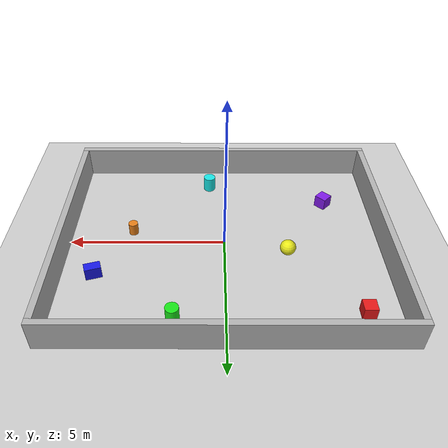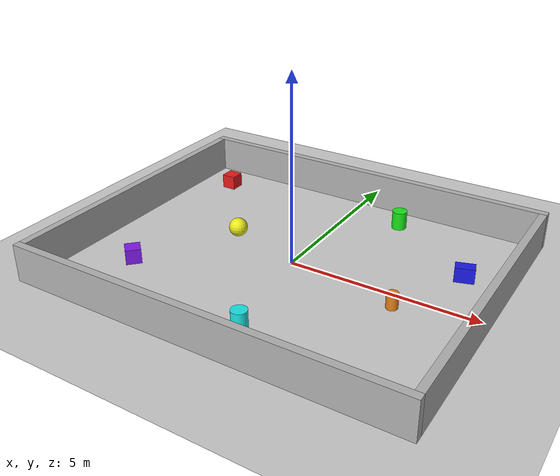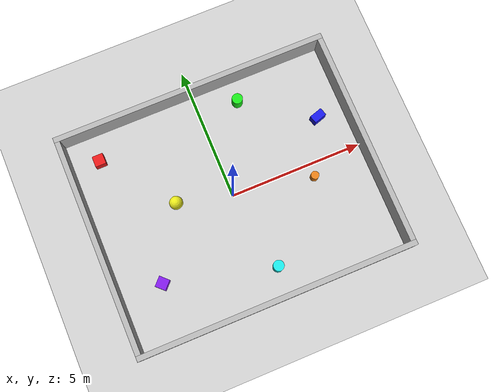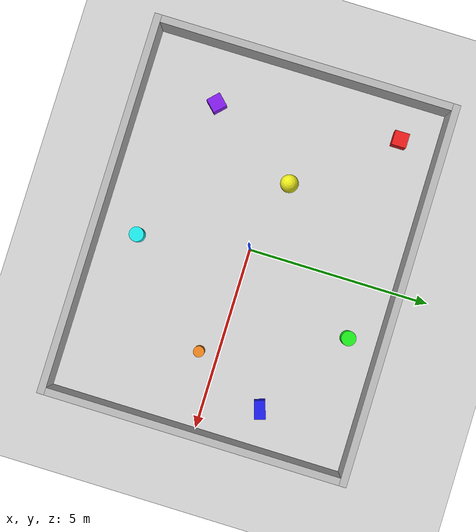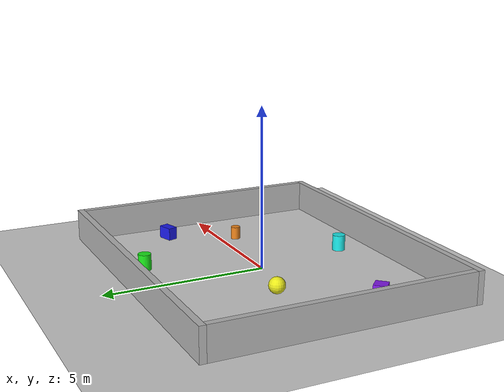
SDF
<?xml version="1.0" ?>
<sdf version="1.8">
  <world name="world_06_scattered">
    <!-- Physics -->
    <physics name="1ms" type="ignored">
      <max_step_size>0.001</max_step_size>
      <real_time_factor>1.0</real_time_factor>
    </physics>

    <!-- Plugins -->
    <plugin filename="gz-sim-physics-system" name="gz::sim::systems::Physics"/>
    <plugin filename="gz-sim-user-commands-system" name="gz::sim::systems::UserCommands"/>
    <plugin filename="gz-sim-scene-broadcaster-system" name="gz::sim::systems::SceneBroadcaster"/>
    <plugin filename="gz-sim-sensors-system" name="gz::sim::systems::Sensors">
      <render_engine>ogre2</render_engine>
    </plugin>

    <!-- Lighting -->
    <light type="directional" name="sun">
      <cast_shadows>true</cast_shadows>
      <pose>0 0 10 0 0 0</pose>
      <diffuse>0.8 0.8 0.8 1</diffuse>
      <specular>0.2 0.2 0.2 1</specular>
      <attenuation>
        <range>1000</range>
        <constant>0.9</constant>
        <linear>0.01</linear>
        <quadratic>0.001</quadratic>
      </attenuation>
      <direction>-0.5 0.1 -0.9</direction>
    </light>

    <!-- Ground Plane -->
    <model name="ground_plane">
      <static>true</static>
      <link name="link">
        <collision name="collision">
          <geometry>
            <plane>
              <normal>0 0 1</normal>
              <size>100 100</size>
            </plane>
          </geometry>
        </collision>
        <visual name="visual">
          <geometry>
            <plane>
              <normal>0 0 1</normal>
              <size>100 100</size>
            </plane>
          </geometry>
          <material>
            <ambient>0.8 0.8 0.8 1</ambient>
            <diffuse>0.8 0.8 0.8 1</diffuse>
            <specular>0.8 0.8 0.8 1</specular>
          </material>
        </visual>
      </link>
    </model>

    <!-- Walls - Rectangular arena 10m x 8m -->
    <!-- North Wall -->
    <model name="wall_north">
      <static>true</static>
      <pose>0 4.1 0.5 0 0 0</pose>
      <link name="link">
        <collision name="collision">
          <geometry>
            <box>
              <size>10.4 0.2 1.0</size>
            </box>
          </geometry>
        </collision>
        <visual name="visual">
          <geometry>
            <box>
              <size>10.4 0.2 1.0</size>
            </box>
          </geometry>
          <material>
            <ambient>0.5 0.5 0.5 1</ambient>
            <diffuse>0.7 0.7 0.7 1</diffuse>
            <specular>0.1 0.1 0.1 1</specular>
          </material>
        </visual>
      </link>
    </model>

    <!-- South Wall -->
    <model name="wall_south">
      <static>true</static>
      <pose>0 -4.1 0.5 0 0 0</pose>
      <link name="link">
        <collision name="collision">
          <geometry>
            <box>
              <size>10.4 0.2 1.0</size>
            </box>
          </geometry>
        </collision>
        <visual name="visual">
          <geometry>
            <box>
              <size>10.4 0.2 1.0</size>
            </box>
          </geometry>
          <material>
            <ambient>0.5 0.5 0.5 1</ambient>
            <diffuse>0.7 0.7 0.7 1</diffuse>
            <specular>0.1 0.1 0.1 1</specular>
          </material>
        </visual>
      </link>
    </model>

    <!-- East Wall -->
    <model name="wall_east">
      <static>true</static>
      <pose>5.1 0 0.5 0 0 0</pose>
      <link name="link">
        <collision name="collision">
          <geometry>
            <box>
              <size>0.2 8.0 1.0</size>
            </box>
          </geometry>
        </collision>
        <visual name="visual">
          <geometry>
            <box>
              <size>0.2 8.0 1.0</size>
            </box>
          </geometry>
          <material>
            <ambient>0.5 0.5 0.5 1</ambient>
            <diffuse>0.7 0.7 0.7 1</diffuse>
            <specular>0.1 0.1 0.1 1</specular>
          </material>
        </visual>
      </link>
    </model>

    <!-- West Wall -->
    <model name="wall_west">
      <static>true</static>
      <pose>-5.1 0 0.5 0 0 0</pose>
      <link name="link">
        <collision name="collision">
          <geometry>
            <box>
              <size>0.2 8.0 1.0</size>
            </box>
          </geometry>
        </collision>
        <visual name="visual">
          <geometry>
            <box>
              <size>0.2 8.0 1.0</size>
            </box>
          </geometry>
          <material>
            <ambient>0.5 0.5 0.5 1</ambient>
            <diffuse>0.7 0.7 0.7 1</diffuse>
            <specular>0.1 0.1 0.1 1</specular>
          </material>
        </visual>
      </link>
    </model>

    <!-- Scattered small obstacles -->
    <model name="obstacle_1">
      <static>true</static>
      <pose>-4.0 3.0 0.2 0 0 0</pose>
      <link name="link">
        <collision name="collision">
          <geometry>
            <box>
              <size>0.4 0.4 0.4</size>
            </box>
          </geometry>
        </collision>
        <visual name="visual">
          <geometry>
            <box>
              <size>0.4 0.4 0.4</size>
            </box>
          </geometry>
          <material>
            <ambient>0.9 0.1 0.1 1</ambient>
            <diffuse>0.9 0.1 0.1 1</diffuse>
            <specular>0.1 0.1 0.1 1</specular>
          </material>
        </visual>
      </link>
    </model>

    <model name="obstacle_2">
      <static>true</static>
      <pose>1.5 3.2 0.25 0 0 0</pose>
      <link name="link">
        <collision name="collision">
          <geometry>
            <cylinder>
              <radius>0.2</radius>
              <length>0.5</length>
            </cylinder>
          </geometry>
        </collision>
        <visual name="visual">
          <geometry>
            <cylinder>
              <radius>0.2</radius>
              <length>0.5</length>
            </cylinder>
          </geometry>
          <material>
            <ambient>0.1 0.9 0.1 1</ambient>
            <diffuse>0.1 0.9 0.1 1</diffuse>
            <specular>0.1 0.1 0.1 1</specular>
          </material>
        </visual>
      </link>
    </model>

    <model name="obstacle_3">
      <static>true</static>
      <pose>4.0 1.5 0.2 0 0 0.3</pose>
      <link name="link">
        <collision name="collision">
          <geometry>
            <box>
              <size>0.5 0.3 0.4</size>
            </box>
          </geometry>
        </collision>
        <visual name="visual">
          <geometry>
            <box>
              <size>0.5 0.3 0.4</size>
            </box>
          </geometry>
          <material>
            <ambient>0.1 0.1 0.9 1</ambient>
            <diffuse>0.1 0.1 0.9 1</diffuse>
            <specular>0.1 0.1 0.1 1</specular>
          </material>
        </visual>
      </link>
    </model>

    <model name="obstacle_4">
      <static>true</static>
      <pose>-2.0 0.5 0.25 0 0 0</pose>
      <link name="link">
        <collision name="collision">
          <geometry>
            <sphere>
              <radius>0.25</radius>
            </sphere>
          </geometry>
        </collision>
        <visual name="visual">
          <geometry>
            <sphere>
              <radius>0.25</radius>
            </sphere>
          </geometry>
          <material>
            <ambient>0.9 0.9 0.1 1</ambient>
            <diffuse>0.9 0.9 0.1 1</diffuse>
            <specular>0.1 0.1 0.1 1</specular>
          </material>
        </visual>
      </link>
    </model>

    <model name="obstacle_5">
      <static>true</static>
      <pose>3.0 -0.5 0.2 0 0 0</pose>
      <link name="link">
        <collision name="collision">
          <geometry>
            <cylinder>
              <radius>0.15</radius>
              <length>0.4</length>
            </cylinder>
          </geometry>
        </collision>
        <visual name="visual">
          <geometry>
            <cylinder>
              <radius>0.15</radius>
              <length>0.4</length>
            </cylinder>
          </geometry>
          <material>
            <ambient>0.9 0.5 0.1 1</ambient>
            <diffuse>0.9 0.5 0.1 1</diffuse>
            <specular>0.1 0.1 0.1 1</specular>
          </material>
        </visual>
      </link>
    </model>

    <model name="obstacle_6">
      <static>true</static>
      <pose>-3.5 -2.0 0.2 0 0 0.8</pose>
      <link name="link">
        <collision name="collision">
          <geometry>
            <box>
              <size>0.4 0.4 0.4</size>
            </box>
          </geometry>
        </collision>
        <visual name="visual">
          <geometry>
            <box>
              <size>0.4 0.4 0.4</size>
            </box>
          </geometry>
          <material>
            <ambient>0.5 0.1 0.9 1</ambient>
            <diffuse>0.5 0.1 0.9 1</diffuse>
            <specular>0.1 0.1 0.1 1</specular>
          </material>
        </visual>
      </link>
    </model>

    <model name="obstacle_7">
      <static>true</static>
      <pose>0.5 -3.0 0.25 0 0 0</pose>
      <link name="link">
        <collision name="collision">
          <geometry>
            <cylinder>
              <radius>0.2</radius>
              <length>0.5</length>
            </cylinder>
          </geometry>
        </collision>
        <visual name="visual">
          <geometry>
            <cylinder>
              <radius>0.2</radius>
              <length>0.5</length>
            </cylinder>
          </geometry>
          <material>
            <ambient>0.1 0.9 0.9 1</ambient>
            <diffuse>0.1 0.9 0.9 1</diffuse>
            <specular>0.1 0.1 0.1 1</specular>
          </material>
        </visual>
      </link>
    </model>

  </world>
</sdf>
